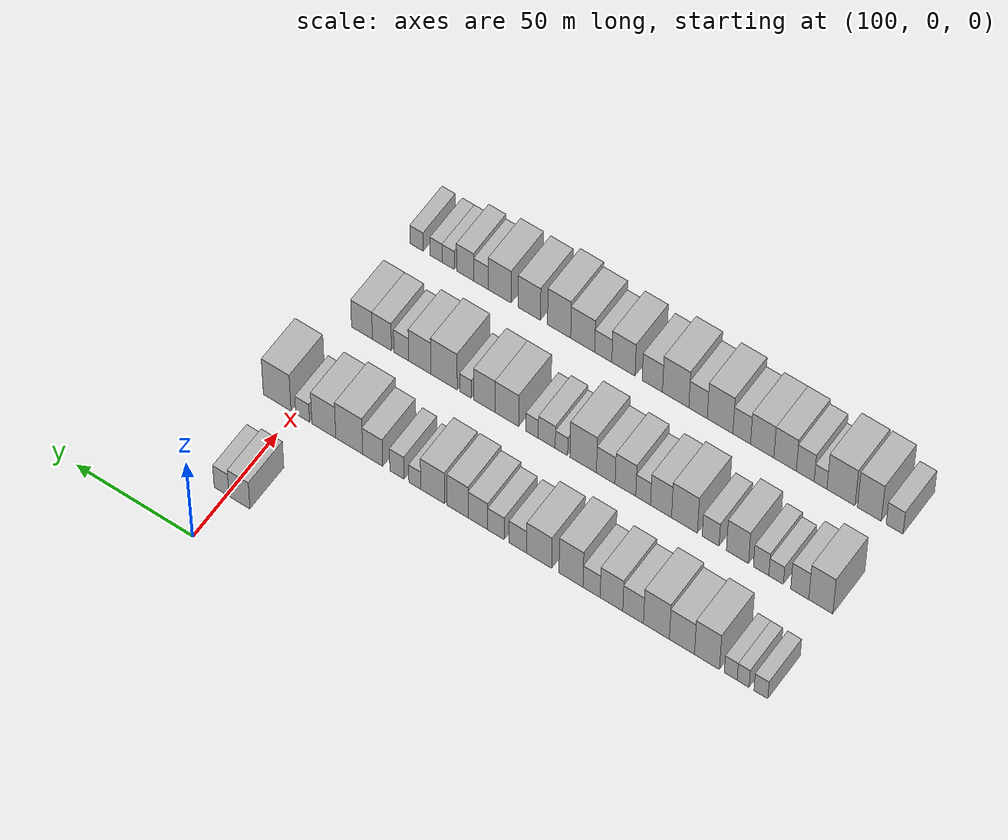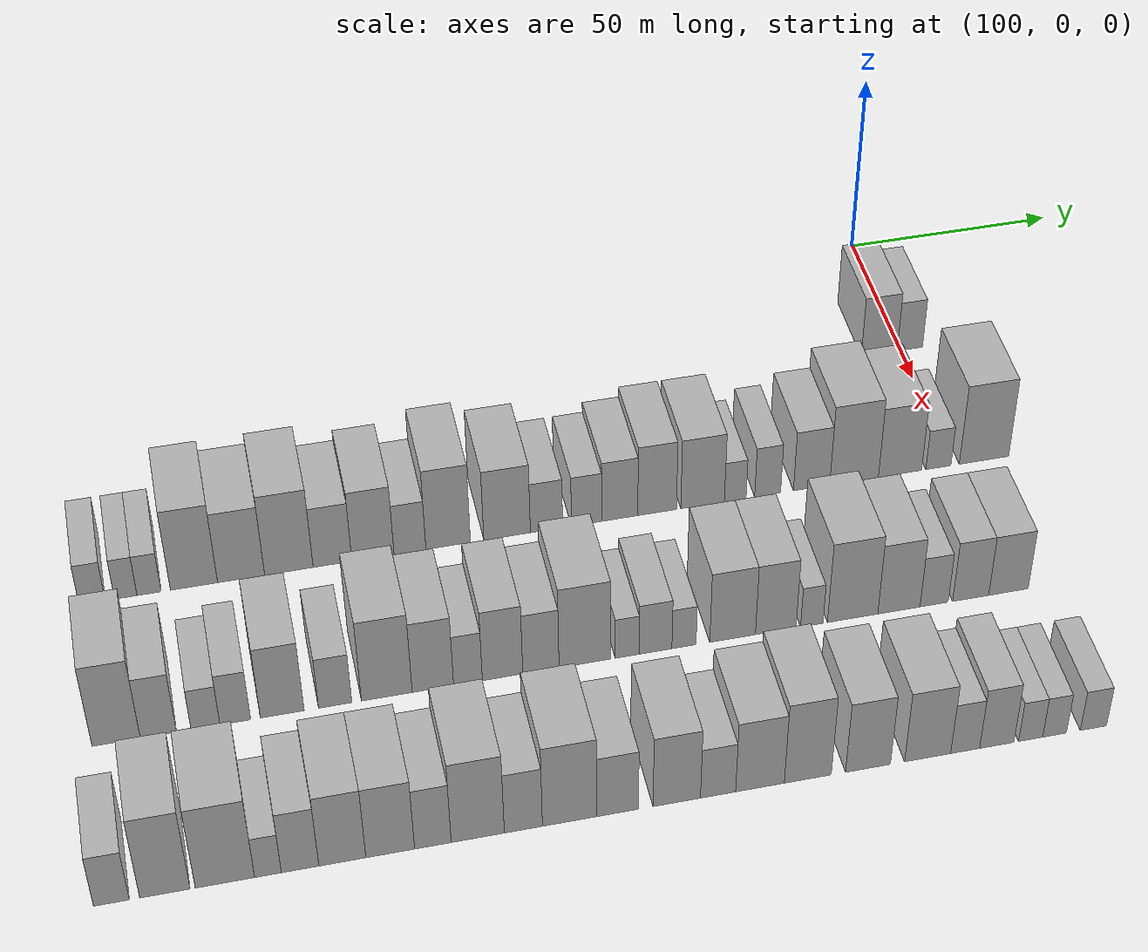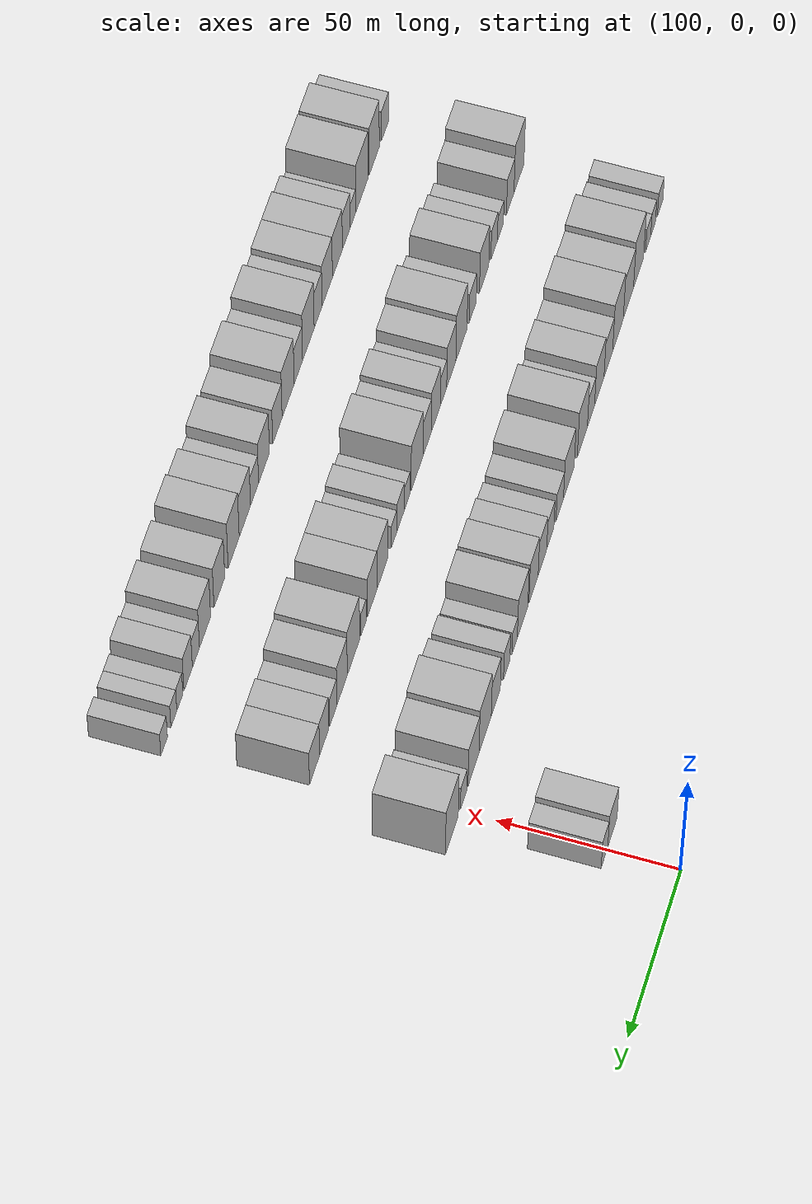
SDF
<sdf version="1.6">
 <world name="default">
  <model name="building_342">
   <static>1</static>
   <pose>130.0000 -5.2598 0 0.000000 0.000000 0.000000</pose>
   <link name="link">
    <pose>0 0 9.00 0 0 0</pose>
    <collision name="collision"><geometry><box><size>20.0000 8.9105 18.0000</size></box></geometry></collision>
    <visual name="visual">
     <cast_shadows>0</cast_shadows>
     <geometry><box><size>20.0000 8.9105 18.0000</size></box></geometry>
     <material>
      <script>
       <uri>model://HANNAS_wall/materials/scripts</uri>
       <uri>model://HANNAS_wall/materials/textures</uri>
       <name>vrc/HANNAS_wall</name>
      </script>
     </material>
    </visual>
   </link>
  </model>
  <model name="building_343">
   <static>1</static>
   <pose>130.0000 2.3541 0 0.000000 0.000000 0.000000</pose>
   <link name="link">
    <pose>0 0 7.50 0 0 0</pose>
    <collision name="collision"><geometry><box><size>20.0000 6.3174 15.0000</size></box></geometry></collision>
    <visual name="visual">
     <cast_shadows>0</cast_shadows>
     <geometry><box><size>20.0000 6.3174 15.0000</size></box></geometry>
     <material>
      <script>
       <uri>model://HANNAS_wall/materials/scripts</uri>
       <uri>model://HANNAS_wall/materials/textures</uri>
       <name>vrc/HANNAS_wall</name>
      </script>
     </material>
    </visual>
   </link>
  </model>
  <model name="building_466">
   <static>1</static>
   <pose>170.0000 -194.4343 0 0.000000 0.000000 0.000000</pose>
   <link name="link">
    <pose>0 0 6.00 0 0 0</pose>
    <collision name="collision"><geometry><box><size>20.0000 5.6229 12.0000</size></box></geometry></collision>
    <visual name="visual">
     <cast_shadows>0</cast_shadows>
     <geometry><box><size>20.0000 5.6229 12.0000</size></box></geometry>
     <material>
      <script>
       <uri>model://HANNAS_wall/materials/scripts</uri>
       <uri>model://HANNAS_wall/materials/textures</uri>
       <name>vrc/HANNAS_wall</name>
      </script>
     </material>
    </visual>
   </link>
  </model>
  <model name="building_467">
   <static>1</static>
   <pose>170.0000 -187.1990 0 0.000000 0.000000 0.000000</pose>
   <link name="link">
    <pose>0 0 6.00 0 0 0</pose>
    <collision name="collision"><geometry><box><size>20.0000 4.8477 12.0000</size></box></geometry></collision>
    <visual name="visual">
     <cast_shadows>0</cast_shadows>
     <geometry><box><size>20.0000 4.8477 12.0000</size></box></geometry>
     <material>
      <script>
       <uri>model://HANNAS_wall/materials/scripts</uri>
       <uri>model://HANNAS_wall/materials/textures</uri>
       <name>vrc/HANNAS_wall</name>
      </script>
     </material>
    </visual>
   </link>
  </model>
  <model name="building_468">
   <static>1</static>
   <pose>170.0000 -182.1726 0 0.000000 0.000000 0.000000</pose>
   <link name="link">
    <pose>0 0 6.00 0 0 0</pose>
    <collision name="collision"><geometry><box><size>20.0000 5.2051 12.0000</size></box></geometry></collision>
    <visual name="visual">
     <cast_shadows>0</cast_shadows>
     <geometry><box><size>20.0000 5.2051 12.0000</size></box></geometry>
     <material>
      <script>
       <uri>model://HANNAS_wall/materials/scripts</uri>
       <uri>model://HANNAS_wall/materials/textures</uri>
       <name>vrc/HANNAS_wall</name>
      </script>
     </material>
    </visual>
   </link>
  </model>
  <model name="building_469">
   <static>1</static>
   <pose>170.0000 -172.4586 0 0.000000 0.000000 0.000000</pose>
   <link name="link">
    <pose>0 0 12.00 0 0 0</pose>
    <collision name="collision"><geometry><box><size>20.0000 10.2230 24.0000</size></box></geometry></collision>
    <visual name="visual">
     <cast_shadows>0</cast_shadows>
     <geometry><box><size>20.0000 10.2230 24.0000</size></box></geometry>
     <material>
      <script>
       <uri>model://HANNAS_wall/materials/scripts</uri>
       <uri>model://HANNAS_wall/materials/textures</uri>
       <name>vrc/HANNAS_wall</name>
      </script>
     </material>
    </visual>
   </link>
  </model>
  <model name="building_470">
   <static>1</static>
   <pose>170.0000 -162.2160 0 0.000000 0.000000 0.000000</pose>
   <link name="link">
    <pose>0 0 10.50 0 0 0</pose>
    <collision name="collision"><geometry><box><size>20.0000 10.2623 21.0000</size></box></geometry></collision>
    <visual name="visual">
     <cast_shadows>0</cast_shadows>
     <geometry><box><size>20.0000 10.2623 21.0000</size></box></geometry>
     <material>
      <script>
       <uri>model://HANNAS_wall/materials/scripts</uri>
       <uri>model://HANNAS_wall/materials/textures</uri>
       <name>vrc/HANNAS_wall</name>
      </script>
     </material>
    </visual>
   </link>
  </model>
  <model name="building_471">
   <static>1</static>
   <pose>170.0000 -151.7544 0 0.000000 0.000000 0.000000</pose>
   <link name="link">
    <pose>0 0 12.00 0 0 0</pose>
    <collision name="collision"><geometry><box><size>20.0000 10.6608 24.0000</size></box></geometry></collision>
    <visual name="visual">
     <cast_shadows>0</cast_shadows>
     <geometry><box><size>20.0000 10.6608 24.0000</size></box></geometry>
     <material>
      <script>
       <uri>model://HANNAS_wall/materials/scripts</uri>
       <uri>model://HANNAS_wall/materials/textures</uri>
       <name>vrc/HANNAS_wall</name>
      </script>
     </material>
    </visual>
   </link>
  </model>
  <model name="building_472">
   <static>1</static>
   <pose>170.0000 -142.1585 0 0.000000 0.000000 0.000000</pose>
   <link name="link">
    <pose>0 0 9.00 0 0 0</pose>
    <collision name="collision"><geometry><box><size>20.0000 8.5311 18.0000</size></box></geometry></collision>
    <visual name="visual">
     <cast_shadows>0</cast_shadows>
     <geometry><box><size>20.0000 8.5311 18.0000</size></box></geometry>
     <material>
      <script>
       <uri>model://HANNAS_wall/materials/scripts</uri>
       <uri>model://HANNAS_wall/materials/textures</uri>
       <name>vrc/HANNAS_wall</name>
      </script>
     </material>
    </visual>
   </link>
  </model>
  <model name="building_473">
   <static>1</static>
   <pose>170.0000 -133.2182 0 0.000000 0.000000 0.000000</pose>
   <link name="link">
    <pose>0 0 10.50 0 0 0</pose>
    <collision name="collision"><geometry><box><size>20.0000 9.3494 21.0000</size></box></geometry></collision>
    <visual name="visual">
     <cast_shadows>0</cast_shadows>
     <geometry><box><size>20.0000 9.3494 21.0000</size></box></geometry>
     <material>
      <script>
       <uri>model://HANNAS_wall/materials/scripts</uri>
       <uri>model://HANNAS_wall/materials/textures</uri>
       <name>vrc/HANNAS_wall</name>
      </script>
     </material>
    </visual>
   </link>
  </model>
  <model name="building_474">
   <static>1</static>
   <pose>170.0000 -124.9927 0 0.000000 0.000000 0.000000</pose>
   <link name="link">
    <pose>0 0 7.50 0 0 0</pose>
    <collision name="collision"><geometry><box><size>20.0000 7.1015 15.0000</size></box></geometry></collision>
    <visual name="visual">
     <cast_shadows>0</cast_shadows>
     <geometry><box><size>20.0000 7.1015 15.0000</size></box></geometry>
     <material>
      <script>
       <uri>model://HANNAS_wall/materials/scripts</uri>
       <uri>model://HANNAS_wall/materials/textures</uri>
       <name>vrc/HANNAS_wall</name>
      </script>
     </material>
    </visual>
   </link>
  </model>
  <model name="building_475">
   <static>1</static>
   <pose>170.0000 -116.4609 0 0.000000 0.000000 0.000000</pose>
   <link name="link">
    <pose>0 0 12.00 0 0 0</pose>
    <collision name="collision"><geometry><box><size>20.0000 9.9622 24.0000</size></box></geometry></collision>
    <visual name="visual">
     <cast_shadows>0</cast_shadows>
     <geometry><box><size>20.0000 9.9622 24.0000</size></box></geometry>
     <material>
      <script>
       <uri>model://HANNAS_wall/materials/scripts</uri>
       <uri>model://HANNAS_wall/materials/textures</uri>
       <name>vrc/HANNAS_wall</name>
      </script>
     </material>
    </visual>
   </link>
  </model>
  <model name="building_476">
   <static>1</static>
   <pose>170.0000 -103.2334 0 0.000000 0.000000 0.000000</pose>
   <link name="link">
    <pose>0 0 10.50 0 0 0</pose>
    <collision name="collision"><geometry><box><size>20.0000 10.4927 21.0000</size></box></geometry></collision>
    <visual name="visual">
     <cast_shadows>0</cast_shadows>
     <geometry><box><size>20.0000 10.4927 21.0000</size></box></geometry>
     <material>
      <script>
       <uri>model://HANNAS_wall/materials/scripts</uri>
       <uri>model://HANNAS_wall/materials/textures</uri>
       <name>vrc/HANNAS_wall</name>
      </script>
     </material>
    </visual>
   </link>
  </model>
  <model name="building_477">
   <static>1</static>
   <pose>170.0000 -94.3351 0 0.000000 0.000000 0.000000</pose>
   <link name="link">
    <pose>0 0 7.50 0 0 0</pose>
    <collision name="collision"><geometry><box><size>20.0000 7.3040 15.0000</size></box></geometry></collision>
    <visual name="visual">
     <cast_shadows>0</cast_shadows>
     <geometry><box><size>20.0000 7.3040 15.0000</size></box></geometry>
     <material>
      <script>
       <uri>model://HANNAS_wall/materials/scripts</uri>
       <uri>model://HANNAS_wall/materials/textures</uri>
       <name>vrc/HANNAS_wall</name>
      </script>
     </material>
    </visual>
   </link>
  </model>
  <model name="building_478">
   <static>1</static>
   <pose>170.0000 -85.2465 0 0.000000 0.000000 0.000000</pose>
   <link name="link">
    <pose>0 0 7.50 0 0 0</pose>
    <collision name="collision"><geometry><box><size>20.0000 6.8730 15.0000</size></box></geometry></collision>
    <visual name="visual">
     <cast_shadows>0</cast_shadows>
     <geometry><box><size>20.0000 6.8730 15.0000</size></box></geometry>
     <material>
      <script>
       <uri>model://HANNAS_wall/materials/scripts</uri>
       <uri>model://HANNAS_wall/materials/textures</uri>
       <name>vrc/HANNAS_wall</name>
      </script>
     </material>
    </visual>
   </link>
  </model>
  <model name="building_479">
   <static>1</static>
   <pose>170.0000 -77.6842 0 0.000000 0.000000 0.000000</pose>
   <link name="link">
    <pose>0 0 9.00 0 0 0</pose>
    <collision name="collision"><geometry><box><size>20.0000 8.2517 18.0000</size></box></geometry></collision>
    <visual name="visual">
     <cast_shadows>0</cast_shadows>
     <geometry><box><size>20.0000 8.2517 18.0000</size></box></geometry>
     <material>
      <script>
       <uri>model://HANNAS_wall/materials/scripts</uri>
       <uri>model://HANNAS_wall/materials/textures</uri>
       <name>vrc/HANNAS_wall</name>
      </script>
     </material>
    </visual>
   </link>
  </model>
  <model name="building_480">
   <static>1</static>
   <pose>170.0000 -69.1161 0 0.000000 0.000000 0.000000</pose>
   <link name="link">
    <pose>0 0 10.50 0 0 0</pose>
    <collision name="collision"><geometry><box><size>20.0000 8.8844 21.0000</size></box></geometry></collision>
    <visual name="visual">
     <cast_shadows>0</cast_shadows>
     <geometry><box><size>20.0000 8.8844 21.0000</size></box></geometry>
     <material>
      <script>
       <uri>model://HANNAS_wall/materials/scripts</uri>
       <uri>model://HANNAS_wall/materials/textures</uri>
       <name>vrc/HANNAS_wall</name>
      </script>
     </material>
    </visual>
   </link>
  </model>
  <model name="building_481">
   <static>1</static>
   <pose>170.0000 -58.6413 0 0.000000 0.000000 0.000000</pose>
   <link name="link">
    <pose>0 0 10.50 0 0 0</pose>
    <collision name="collision"><geometry><box><size>20.0000 10.0652 21.0000</size></box></geometry></collision>
    <visual name="visual">
     <cast_shadows>0</cast_shadows>
     <geometry><box><size>20.0000 10.0652 21.0000</size></box></geometry>
     <material>
      <script>
       <uri>model://HANNAS_wall/materials/scripts</uri>
       <uri>model://HANNAS_wall/materials/textures</uri>
       <name>vrc/HANNAS_wall</name>
      </script>
     </material>
    </visual>
   </link>
  </model>
  <model name="building_482">
   <static>1</static>
   <pose>170.0000 -51.0923 0 0.000000 0.000000 0.000000</pose>
   <link name="link">
    <pose>0 0 6.00 0 0 0</pose>
    <collision name="collision"><geometry><box><size>20.0000 5.0329 12.0000</size></box></geometry></collision>
    <visual name="visual">
     <cast_shadows>0</cast_shadows>
     <geometry><box><size>20.0000 5.0329 12.0000</size></box></geometry>
     <material>
      <script>
       <uri>model://HANNAS_wall/materials/scripts</uri>
       <uri>model://HANNAS_wall/materials/textures</uri>
       <name>vrc/HANNAS_wall</name>
      </script>
     </material>
    </visual>
   </link>
  </model>
  <model name="building_483">
   <static>1</static>
   <pose>170.0000 -43.5519 0 0.000000 0.000000 0.000000</pose>
   <link name="link">
    <pose>0 0 7.50 0 0 0</pose>
    <collision name="collision"><geometry><box><size>20.0000 6.0478 15.0000</size></box></geometry></collision>
    <visual name="visual">
     <cast_shadows>0</cast_shadows>
     <geometry><box><size>20.0000 6.0478 15.0000</size></box></geometry>
     <material>
      <script>
       <uri>model://HANNAS_wall/materials/scripts</uri>
       <uri>model://HANNAS_wall/materials/textures</uri>
       <name>vrc/HANNAS_wall</name>
      </script>
     </material>
    </visual>
   </link>
  </model>
  <model name="building_484">
   <static>1</static>
   <pose>170.0000 -33.2871 0 0.000000 0.000000 0.000000</pose>
   <link name="link">
    <pose>0 0 9.00 0 0 0</pose>
    <collision name="collision"><geometry><box><size>20.0000 8.4818 18.0000</size></box></geometry></collision>
    <visual name="visual">
     <cast_shadows>0</cast_shadows>
     <geometry><box><size>20.0000 8.4818 18.0000</size></box></geometry>
     <material>
      <script>
       <uri>model://HANNAS_wall/materials/scripts</uri>
       <uri>model://HANNAS_wall/materials/textures</uri>
       <name>vrc/HANNAS_wall</name>
      </script>
     </material>
    </visual>
   </link>
  </model>
  <model name="building_485">
   <static>1</static>
   <pose>170.0000 -23.3056 0 0.000000 0.000000 0.000000</pose>
   <link name="link">
    <pose>0 0 12.00 0 0 0</pose>
    <collision name="collision"><geometry><box><size>20.0000 11.4812 24.0000</size></box></geometry></collision>
    <visual name="visual">
     <cast_shadows>0</cast_shadows>
     <geometry><box><size>20.0000 11.4812 24.0000</size></box></geometry>
     <material>
      <script>
       <uri>model://HANNAS_wall/materials/scripts</uri>
       <uri>model://HANNAS_wall/materials/textures</uri>
       <name>vrc/HANNAS_wall</name>
      </script>
     </material>
    </visual>
   </link>
  </model>
  <model name="building_486">
   <static>1</static>
   <pose>170.0000 -12.4539 0 0.000000 0.000000 0.000000</pose>
   <link name="link">
    <pose>0 0 10.50 0 0 0</pose>
    <collision name="collision"><geometry><box><size>20.0000 10.2221 21.0000</size></box></geometry></collision>
    <visual name="visual">
     <cast_shadows>0</cast_shadows>
     <geometry><box><size>20.0000 10.2221 21.0000</size></box></geometry>
     <material>
      <script>
       <uri>model://HANNAS_wall/materials/scripts</uri>
       <uri>model://HANNAS_wall/materials/textures</uri>
       <name>vrc/HANNAS_wall</name>
      </script>
     </material>
    </visual>
   </link>
  </model>
  <model name="building_487">
   <static>1</static>
   <pose>170.0000 -3.3612 0 0.000000 0.000000 0.000000</pose>
   <link name="link">
    <pose>0 0 6.00 0 0 0</pose>
    <collision name="collision"><geometry><box><size>20.0000 5.9633 12.0000</size></box></geometry></collision>
    <visual name="visual">
     <cast_shadows>0</cast_shadows>
     <geometry><box><size>20.0000 5.9633 12.0000</size></box></geometry>
     <material>
      <script>
       <uri>model://HANNAS_wall/materials/scripts</uri>
       <uri>model://HANNAS_wall/materials/textures</uri>
       <name>vrc/HANNAS_wall</name>
      </script>
     </material>
    </visual>
   </link>
  </model>
  <model name="building_488">
   <static>1</static>
   <pose>170.0000 7.5301 0 0.000000 0.000000 0.000000</pose>
   <link name="link">
    <pose>0 0 12.00 0 0 0</pose>
    <collision name="collision"><geometry><box><size>20.0000 11.8194 24.0000</size></box></geometry></collision>
    <visual name="visual">
     <cast_shadows>0</cast_shadows>
     <geometry><box><size>20.0000 11.8194 24.0000</size></box></geometry>
     <material>
      <script>
       <uri>model://HANNAS_wall/materials/scripts</uri>
       <uri>model://HANNAS_wall/materials/textures</uri>
       <name>vrc/HANNAS_wall</name>
      </script>
     </material>
    </visual>
   </link>
  </model>
  <model name="building_608">
   <static>1</static>
   <pose>210.0000 -192.5169 0 0.000000 0.000000 0.000000</pose>
   <link name="link">
    <pose>0 0 12.00 0 0 0</pose>
    <collision name="collision"><geometry><box><size>20.0000 9.8136 24.0000</size></box></geometry></collision>
    <visual name="visual">
     <cast_shadows>0</cast_shadows>
     <geometry><box><size>20.0000 9.8136 24.0000</size></box></geometry>
     <material>
      <script>
       <uri>model://HANNAS_wall/materials/scripts</uri>
       <uri>model://HANNAS_wall/materials/textures</uri>
       <name>vrc/HANNAS_wall</name>
      </script>
     </material>
    </visual>
   </link>
  </model>
  <model name="building_609">
   <static>1</static>
   <pose>210.0000 -183.8991 0 0.000000 0.000000 0.000000</pose>
   <link name="link">
    <pose>0 0 9.00 0 0 0</pose>
    <collision name="collision"><geometry><box><size>20.0000 7.4220 18.0000</size></box></geometry></collision>
    <visual name="visual">
     <cast_shadows>0</cast_shadows>
     <geometry><box><size>20.0000 7.4220 18.0000</size></box></geometry>
     <material>
      <script>
       <uri>model://HANNAS_wall/materials/scripts</uri>
       <uri>model://HANNAS_wall/materials/textures</uri>
       <name>vrc/HANNAS_wall</name>
      </script>
     </material>
    </visual>
   </link>
  </model>
  <model name="building_610">
   <static>1</static>
   <pose>210.0000 -174.2164 0 0.000000 0.000000 0.000000</pose>
   <link name="link">
    <pose>0 0 6.00 0 0 0</pose>
    <collision name="collision"><geometry><box><size>20.0000 5.9435 12.0000</size></box></geometry></collision>
    <visual name="visual">
     <cast_shadows>0</cast_shadows>
     <geometry><box><size>20.0000 5.9435 12.0000</size></box></geometry>
     <material>
      <script>
       <uri>model://HANNAS_wall/materials/scripts</uri>
       <uri>model://HANNAS_wall/materials/textures</uri>
       <name>vrc/HANNAS_wall</name>
      </script>
     </material>
    </visual>
   </link>
  </model>
  <model name="building_611">
   <static>1</static>
   <pose>210.0000 -168.0665 0 0.000000 0.000000 0.000000</pose>
   <link name="link">
    <pose>0 0 7.50 0 0 0</pose>
    <collision name="collision"><geometry><box><size>20.0000 6.3562 15.0000</size></box></geometry></collision>
    <visual name="visual">
     <cast_shadows>0</cast_shadows>
     <geometry><box><size>20.0000 6.3562 15.0000</size></box></geometry>
     <material>
      <script>
       <uri>model://HANNAS_wall/materials/scripts</uri>
       <uri>model://HANNAS_wall/materials/textures</uri>
       <name>vrc/HANNAS_wall</name>
      </script>
     </material>
    </visual>
   </link>
  </model>
  <model name="building_612">
   <static>1</static>
   <pose>210.0000 -158.3302 0 0.000000 0.000000 0.000000</pose>
   <link name="link">
    <pose>0 0 10.50 0 0 0</pose>
    <collision name="collision"><geometry><box><size>20.0000 9.1164 21.0000</size></box></geometry></collision>
    <visual name="visual">
     <cast_shadows>0</cast_shadows>
     <geometry><box><size>20.0000 9.1164 21.0000</size></box></geometry>
     <material>
      <script>
       <uri>model://HANNAS_wall/materials/scripts</uri>
       <uri>model://HANNAS_wall/materials/textures</uri>
       <name>vrc/HANNAS_wall</name>
      </script>
     </material>
    </visual>
   </link>
  </model>
  <model name="building_613">
   <static>1</static>
   <pose>210.0000 -147.2849 0 0.000000 0.000000 0.000000</pose>
   <link name="link">
    <pose>0 0 7.50 0 0 0</pose>
    <collision name="collision"><geometry><box><size>20.0000 6.9743 15.0000</size></box></geometry></collision>
    <visual name="visual">
     <cast_shadows>0</cast_shadows>
     <geometry><box><size>20.0000 6.9743 15.0000</size></box></geometry>
     <material>
      <script>
       <uri>model://HANNAS_wall/materials/scripts</uri>
       <uri>model://HANNAS_wall/materials/textures</uri>
       <name>vrc/HANNAS_wall</name>
      </script>
     </material>
    </visual>
   </link>
  </model>
  <model name="building_614">
   <static>1</static>
   <pose>210.0000 -136.4432 0 0.000000 0.000000 0.000000</pose>
   <link name="link">
    <pose>0 0 12.00 0 0 0</pose>
    <collision name="collision"><geometry><box><size>20.0000 10.7091 24.0000</size></box></geometry></collision>
    <visual name="visual">
     <cast_shadows>0</cast_shadows>
     <geometry><box><size>20.0000 10.7091 24.0000</size></box></geometry>
     <material>
      <script>
       <uri>model://HANNAS_wall/materials/scripts</uri>
       <uri>model://HANNAS_wall/materials/textures</uri>
       <name>vrc/HANNAS_wall</name>
      </script>
     </material>
    </visual>
   </link>
  </model>
  <model name="building_615">
   <static>1</static>
   <pose>210.0000 -126.7074 0 0.000000 0.000000 0.000000</pose>
   <link name="link">
    <pose>0 0 10.50 0 0 0</pose>
    <collision name="collision"><geometry><box><size>20.0000 8.7625 21.0000</size></box></geometry></collision>
    <visual name="visual">
     <cast_shadows>0</cast_shadows>
     <geometry><box><size>20.0000 8.7625 21.0000</size></box></geometry>
     <material>
      <script>
       <uri>model://HANNAS_wall/materials/scripts</uri>
       <uri>model://HANNAS_wall/materials/textures</uri>
       <name>vrc/HANNAS_wall</name>
      </script>
     </material>
    </visual>
   </link>
  </model>
  <model name="building_616">
   <static>1</static>
   <pose>210.0000 -119.2696 0 0.000000 0.000000 0.000000</pose>
   <link name="link">
    <pose>0 0 7.50 0 0 0</pose>
    <collision name="collision"><geometry><box><size>20.0000 6.1130 15.0000</size></box></geometry></collision>
    <visual name="visual">
     <cast_shadows>0</cast_shadows>
     <geometry><box><size>20.0000 6.1130 15.0000</size></box></geometry>
     <material>
      <script>
       <uri>model://HANNAS_wall/materials/scripts</uri>
       <uri>model://HANNAS_wall/materials/textures</uri>
       <name>vrc/HANNAS_wall</name>
      </script>
     </material>
    </visual>
   </link>
  </model>
  <model name="building_617">
   <static>1</static>
   <pose>210.0000 -111.8961 0 0.000000 0.000000 0.000000</pose>
   <link name="link">
    <pose>0 0 10.50 0 0 0</pose>
    <collision name="collision"><geometry><box><size>20.0000 8.6340 21.0000</size></box></geometry></collision>
    <visual name="visual">
     <cast_shadows>0</cast_shadows>
     <geometry><box><size>20.0000 8.6340 21.0000</size></box></geometry>
     <material>
      <script>
       <uri>model://HANNAS_wall/materials/scripts</uri>
       <uri>model://HANNAS_wall/materials/textures</uri>
       <name>vrc/HANNAS_wall</name>
      </script>
     </material>
    </visual>
   </link>
  </model>
  <model name="building_618">
   <static>1</static>
   <pose>210.0000 -103.6850 0 0.000000 0.000000 0.000000</pose>
   <link name="link">
    <pose>0 0 9.00 0 0 0</pose>
    <collision name="collision"><geometry><box><size>20.0000 7.7881 18.0000</size></box></geometry></collision>
    <visual name="visual">
     <cast_shadows>0</cast_shadows>
     <geometry><box><size>20.0000 7.7881 18.0000</size></box></geometry>
     <material>
      <script>
       <uri>model://HANNAS_wall/materials/scripts</uri>
       <uri>model://HANNAS_wall/materials/textures</uri>
       <name>vrc/HANNAS_wall</name>
      </script>
     </material>
    </visual>
   </link>
  </model>
  <model name="building_619">
   <static>1</static>
   <pose>210.0000 -94.2285 0 0.000000 0.000000 0.000000</pose>
   <link name="link">
    <pose>0 0 12.00 0 0 0</pose>
    <collision name="collision"><geometry><box><size>20.0000 11.1250 24.0000</size></box></geometry></collision>
    <visual name="visual">
     <cast_shadows>0</cast_shadows>
     <geometry><box><size>20.0000 11.1250 24.0000</size></box></geometry>
     <material>
      <script>
       <uri>model://HANNAS_wall/materials/scripts</uri>
       <uri>model://HANNAS_wall/materials/textures</uri>
       <name>vrc/HANNAS_wall</name>
      </script>
     </material>
    </visual>
   </link>
  </model>
  <model name="building_620">
   <static>1</static>
   <pose>210.0000 -85.0710 0 0.000000 0.000000 0.000000</pose>
   <link name="link">
    <pose>0 0 6.00 0 0 0</pose>
    <collision name="collision"><geometry><box><size>20.0000 5.1900 12.0000</size></box></geometry></collision>
    <visual name="visual">
     <cast_shadows>0</cast_shadows>
     <geometry><box><size>20.0000 5.1900 12.0000</size></box></geometry>
     <material>
      <script>
       <uri>model://HANNAS_wall/materials/scripts</uri>
       <uri>model://HANNAS_wall/materials/textures</uri>
       <name>vrc/HANNAS_wall</name>
      </script>
     </material>
    </visual>
   </link>
  </model>
  <model name="building_621">
   <static>1</static>
   <pose>210.0000 -78.9095 0 0.000000 0.000000 0.000000</pose>
   <link name="link">
    <pose>0 0 7.50 0 0 0</pose>
    <collision name="collision"><geometry><box><size>20.0000 7.1330 15.0000</size></box></geometry></collision>
    <visual name="visual">
     <cast_shadows>0</cast_shadows>
     <geometry><box><size>20.0000 7.1330 15.0000</size></box></geometry>
     <material>
      <script>
       <uri>model://HANNAS_wall/materials/scripts</uri>
       <uri>model://HANNAS_wall/materials/textures</uri>
       <name>vrc/HANNAS_wall</name>
      </script>
     </material>
    </visual>
   </link>
  </model>
  <model name="building_622">
   <static>1</static>
   <pose>210.0000 -72.7045 0 0.000000 0.000000 0.000000</pose>
   <link name="link">
    <pose>0 0 6.00 0 0 0</pose>
    <collision name="collision"><geometry><box><size>20.0000 5.2769 12.0000</size></box></geometry></collision>
    <visual name="visual">
     <cast_shadows>0</cast_shadows>
     <geometry><box><size>20.0000 5.2769 12.0000</size></box></geometry>
     <material>
      <script>
       <uri>model://HANNAS_wall/materials/scripts</uri>
       <uri>model://HANNAS_wall/materials/textures</uri>
       <name>vrc/HANNAS_wall</name>
      </script>
     </material>
    </visual>
   </link>
  </model>
  <model name="building_623">
   <static>1</static>
   <pose>210.0000 -62.0403 0 0.000000 0.000000 0.000000</pose>
   <link name="link">
    <pose>0 0 10.50 0 0 0</pose>
    <collision name="collision"><geometry><box><size>20.0000 10.0515 21.0000</size></box></geometry></collision>
    <visual name="visual">
     <cast_shadows>0</cast_shadows>
     <geometry><box><size>20.0000 10.0515 21.0000</size></box></geometry>
     <material>
      <script>
       <uri>model://HANNAS_wall/materials/scripts</uri>
       <uri>model://HANNAS_wall/materials/textures</uri>
       <name>vrc/HANNAS_wall</name>
      </script>
     </material>
    </visual>
   </link>
  </model>
  <model name="building_624">
   <static>1</static>
   <pose>210.0000 -52.5276 0 0.000000 0.000000 0.000000</pose>
   <link name="link">
    <pose>0 0 10.50 0 0 0</pose>
    <collision name="collision"><geometry><box><size>20.0000 8.9738 21.0000</size></box></geometry></collision>
    <visual name="visual">
     <cast_shadows>0</cast_shadows>
     <geometry><box><size>20.0000 8.9738 21.0000</size></box></geometry>
     <material>
      <script>
       <uri>model://HANNAS_wall/materials/scripts</uri>
       <uri>model://HANNAS_wall/materials/textures</uri>
       <name>vrc/HANNAS_wall</name>
      </script>
     </material>
    </visual>
   </link>
  </model>
  <model name="building_625">
   <static>1</static>
   <pose>210.0000 -44.5511 0 0.000000 0.000000 0.000000</pose>
   <link name="link">
    <pose>0 0 6.00 0 0 0</pose>
    <collision name="collision"><geometry><box><size>20.0000 4.9792 12.0000</size></box></geometry></collision>
    <visual name="visual">
     <cast_shadows>0</cast_shadows>
     <geometry><box><size>20.0000 4.9792 12.0000</size></box></geometry>
     <material>
      <script>
       <uri>model://HANNAS_wall/materials/scripts</uri>
       <uri>model://HANNAS_wall/materials/textures</uri>
       <name>vrc/HANNAS_wall</name>
      </script>
     </material>
    </visual>
   </link>
  </model>
  <model name="building_626">
   <static>1</static>
   <pose>210.0000 -35.4413 0 0.000000 0.000000 0.000000</pose>
   <link name="link">
    <pose>0 0 12.00 0 0 0</pose>
    <collision name="collision"><geometry><box><size>20.0000 11.2404 24.0000</size></box></geometry></collision>
    <visual name="visual">
     <cast_shadows>0</cast_shadows>
     <geometry><box><size>20.0000 11.2404 24.0000</size></box></geometry>
     <material>
      <script>
       <uri>model://HANNAS_wall/materials/scripts</uri>
       <uri>model://HANNAS_wall/materials/textures</uri>
       <name>vrc/HANNAS_wall</name>
      </script>
     </material>
    </visual>
   </link>
  </model>
  <model name="building_627">
   <static>1</static>
   <pose>210.0000 -25.0858 0 0.000000 0.000000 0.000000</pose>
   <link name="link">
    <pose>0 0 10.50 0 0 0</pose>
    <collision name="collision"><geometry><box><size>20.0000 9.4706 21.0000</size></box></geometry></collision>
    <visual name="visual">
     <cast_shadows>0</cast_shadows>
     <geometry><box><size>20.0000 9.4706 21.0000</size></box></geometry>
     <material>
      <script>
       <uri>model://HANNAS_wall/materials/scripts</uri>
       <uri>model://HANNAS_wall/materials/textures</uri>
       <name>vrc/HANNAS_wall</name>
      </script>
     </material>
    </visual>
   </link>
  </model>
  <model name="building_628">
   <static>1</static>
   <pose>210.0000 -17.1728 0 0.000000 0.000000 0.000000</pose>
   <link name="link">
    <pose>0 0 7.50 0 0 0</pose>
    <collision name="collision"><geometry><box><size>20.0000 6.3554 15.0000</size></box></geometry></collision>
    <visual name="visual">
     <cast_shadows>0</cast_shadows>
     <geometry><box><size>20.0000 6.3554 15.0000</size></box></geometry>
     <material>
      <script>
       <uri>model://HANNAS_wall/materials/scripts</uri>
       <uri>model://HANNAS_wall/materials/textures</uri>
       <name>vrc/HANNAS_wall</name>
      </script>
     </material>
    </visual>
   </link>
  </model>
  <model name="building_629">
   <static>1</static>
   <pose>210.0000 -8.8990 0 0.000000 0.000000 0.000000</pose>
   <link name="link">
    <pose>0 0 9.00 0 0 0</pose>
    <collision name="collision"><geometry><box><size>20.0000 8.1922 18.0000</size></box></geometry></collision>
    <visual name="visual">
     <cast_shadows>0</cast_shadows>
     <geometry><box><size>20.0000 8.1922 18.0000</size></box></geometry>
     <material>
      <script>
       <uri>model://HANNAS_wall/materials/scripts</uri>
       <uri>model://HANNAS_wall/materials/textures</uri>
       <name>vrc/HANNAS_wall</name>
      </script>
     </material>
    </visual>
   </link>
  </model>
  <model name="building_630">
   <static>1</static>
   <pose>210.0000 -0.3094 0 0.000000 0.000000 0.000000</pose>
   <link name="link">
    <pose>0 0 9.00 0 0 0</pose>
    <collision name="collision"><geometry><box><size>20.0000 8.9871 18.0000</size></box></geometry></collision>
    <visual name="visual">
     <cast_shadows>0</cast_shadows>
     <geometry><box><size>20.0000 8.9871 18.0000</size></box></geometry>
     <material>
      <script>
       <uri>model://HANNAS_wall/materials/scripts</uri>
       <uri>model://HANNAS_wall/materials/textures</uri>
       <name>vrc/HANNAS_wall</name>
      </script>
     </material>
    </visual>
   </link>
  </model>
  <model name="building_752">
   <static>1</static>
   <pose>250.0000 -196.6821 0 0.000000 0.000000 0.000000</pose>
   <link name="link">
    <pose>0 0 7.50 0 0 0</pose>
    <collision name="collision"><geometry><box><size>20.0000 6.9165 15.0000</size></box></geometry></collision>
    <visual name="visual">
     <cast_shadows>0</cast_shadows>
     <geometry><box><size>20.0000 6.9165 15.0000</size></box></geometry>
     <material>
      <script>
       <uri>model://HANNAS_wall/materials/scripts</uri>
       <uri>model://HANNAS_wall/materials/textures</uri>
       <name>vrc/HANNAS_wall</name>
      </script>
     </material>
    </visual>
   </link>
  </model>
  <model name="building_753">
   <static>1</static>
   <pose>250.0000 -186.3409 0 0.000000 0.000000 0.000000</pose>
   <link name="link">
    <pose>0 0 12.00 0 0 0</pose>
    <collision name="collision"><geometry><box><size>20.0000 9.7659 24.0000</size></box></geometry></collision>
    <visual name="visual">
     <cast_shadows>0</cast_shadows>
     <geometry><box><size>20.0000 9.7659 24.0000</size></box></geometry>
     <material>
      <script>
       <uri>model://HANNAS_wall/materials/scripts</uri>
       <uri>model://HANNAS_wall/materials/textures</uri>
       <name>vrc/HANNAS_wall</name>
      </script>
     </material>
    </visual>
   </link>
  </model>
  <model name="building_754">
   <static>1</static>
   <pose>250.0000 -174.6660 0 0.000000 0.000000 0.000000</pose>
   <link name="link">
    <pose>0 0 12.00 0 0 0</pose>
    <collision name="collision"><geometry><box><size>20.0000 11.5839 24.0000</size></box></geometry></collision>
    <visual name="visual">
     <cast_shadows>0</cast_shadows>
     <geometry><box><size>20.0000 11.5839 24.0000</size></box></geometry>
     <material>
      <script>
       <uri>model://HANNAS_wall/materials/scripts</uri>
       <uri>model://HANNAS_wall/materials/textures</uri>
       <name>vrc/HANNAS_wall</name>
      </script>
     </material>
    </visual>
   </link>
  </model>
  <model name="building_755">
   <static>1</static>
   <pose>250.0000 -166.2453 0 0.000000 0.000000 0.000000</pose>
   <link name="link">
    <pose>0 0 6.00 0 0 0</pose>
    <collision name="collision"><geometry><box><size>20.0000 5.2575 12.0000</size></box></geometry></collision>
    <visual name="visual">
     <cast_shadows>0</cast_shadows>
     <geometry><box><size>20.0000 5.2575 12.0000</size></box></geometry>
     <material>
      <script>
       <uri>model://HANNAS_wall/materials/scripts</uri>
       <uri>model://HANNAS_wall/materials/textures</uri>
       <name>vrc/HANNAS_wall</name>
      </script>
     </material>
    </visual>
   </link>
  </model>
  <model name="building_756">
   <static>1</static>
   <pose>250.0000 -159.9228 0 0.000000 0.000000 0.000000</pose>
   <link name="link">
    <pose>0 0 9.00 0 0 0</pose>
    <collision name="collision"><geometry><box><size>20.0000 7.3875 18.0000</size></box></geometry></collision>
    <visual name="visual">
     <cast_shadows>0</cast_shadows>
     <geometry><box><size>20.0000 7.3875 18.0000</size></box></geometry>
     <material>
      <script>
       <uri>model://HANNAS_wall/materials/scripts</uri>
       <uri>model://HANNAS_wall/materials/textures</uri>
       <name>vrc/HANNAS_wall</name>
      </script>
     </material>
    </visual>
   </link>
  </model>
  <model name="building_757">
   <static>1</static>
   <pose>250.0000 -151.5741 0 0.000000 0.000000 0.000000</pose>
   <link name="link">
    <pose>0 0 10.50 0 0 0</pose>
    <collision name="collision"><geometry><box><size>20.0000 9.3100 21.0000</size></box></geometry></collision>
    <visual name="visual">
     <cast_shadows>0</cast_shadows>
     <geometry><box><size>20.0000 9.3100 21.0000</size></box></geometry>
     <material>
      <script>
       <uri>model://HANNAS_wall/materials/scripts</uri>
       <uri>model://HANNAS_wall/materials/textures</uri>
       <name>vrc/HANNAS_wall</name>
      </script>
     </material>
    </visual>
   </link>
  </model>
  <model name="building_758">
   <static>1</static>
   <pose>250.0000 -142.0632 0 0.000000 0.000000 0.000000</pose>
   <link name="link">
    <pose>0 0 10.50 0 0 0</pose>
    <collision name="collision"><geometry><box><size>20.0000 9.7118 21.0000</size></box></geometry></collision>
    <visual name="visual">
     <cast_shadows>0</cast_shadows>
     <geometry><box><size>20.0000 9.7118 21.0000</size></box></geometry>
     <material>
      <script>
       <uri>model://HANNAS_wall/materials/scripts</uri>
       <uri>model://HANNAS_wall/materials/textures</uri>
       <name>vrc/HANNAS_wall</name>
      </script>
     </material>
    </visual>
   </link>
  </model>
  <model name="building_759">
   <static>1</static>
   <pose>250.0000 -133.5440 0 0.000000 0.000000 0.000000</pose>
   <link name="link">
    <pose>0 0 9.00 0 0 0</pose>
    <collision name="collision"><geometry><box><size>20.0000 7.3266 18.0000</size></box></geometry></collision>
    <visual name="visual">
     <cast_shadows>0</cast_shadows>
     <geometry><box><size>20.0000 7.3266 18.0000</size></box></geometry>
     <material>
      <script>
       <uri>model://HANNAS_wall/materials/scripts</uri>
       <uri>model://HANNAS_wall/materials/textures</uri>
       <name>vrc/HANNAS_wall</name>
      </script>
     </material>
    </visual>
   </link>
  </model>
  <model name="building_760">
   <static>1</static>
   <pose>250.0000 -124.5284 0 0.000000 0.000000 0.000000</pose>
   <link name="link">
    <pose>0 0 12.00 0 0 0</pose>
    <collision name="collision"><geometry><box><size>20.0000 10.7046 24.0000</size></box></geometry></collision>
    <visual name="visual">
     <cast_shadows>0</cast_shadows>
     <geometry><box><size>20.0000 10.7046 24.0000</size></box></geometry>
     <material>
      <script>
       <uri>model://HANNAS_wall/materials/scripts</uri>
       <uri>model://HANNAS_wall/materials/textures</uri>
       <name>vrc/HANNAS_wall</name>
      </script>
     </material>
    </visual>
   </link>
  </model>
  <model name="building_761">
   <static>1</static>
   <pose>250.0000 -115.3183 0 0.000000 0.000000 0.000000</pose>
   <link name="link">
    <pose>0 0 9.00 0 0 0</pose>
    <collision name="collision"><geometry><box><size>20.0000 7.7156 18.0000</size></box></geometry></collision>
    <visual name="visual">
     <cast_shadows>0</cast_shadows>
     <geometry><box><size>20.0000 7.7156 18.0000</size></box></geometry>
     <material>
      <script>
       <uri>model://HANNAS_wall/materials/scripts</uri>
       <uri>model://HANNAS_wall/materials/textures</uri>
       <name>vrc/HANNAS_wall</name>
      </script>
     </material>
    </visual>
   </link>
  </model>
  <model name="building_762">
   <static>1</static>
   <pose>250.0000 -105.9332 0 0.000000 0.000000 0.000000</pose>
   <link name="link">
    <pose>0 0 12.00 0 0 0</pose>
    <collision name="collision"><geometry><box><size>20.0000 11.0545 24.0000</size></box></geometry></collision>
    <visual name="visual">
     <cast_shadows>0</cast_shadows>
     <geometry><box><size>20.0000 11.0545 24.0000</size></box></geometry>
     <material>
      <script>
       <uri>model://HANNAS_wall/materials/scripts</uri>
       <uri>model://HANNAS_wall/materials/textures</uri>
       <name>vrc/HANNAS_wall</name>
      </script>
     </material>
    </visual>
   </link>
  </model>
  <model name="building_763">
   <static>1</static>
   <pose>250.0000 -96.1313 0 0.000000 0.000000 0.000000</pose>
   <link name="link">
    <pose>0 0 9.00 0 0 0</pose>
    <collision name="collision"><geometry><box><size>20.0000 8.5493 18.0000</size></box></geometry></collision>
    <visual name="visual">
     <cast_shadows>0</cast_shadows>
     <geometry><box><size>20.0000 8.5493 18.0000</size></box></geometry>
     <material>
      <script>
       <uri>model://HANNAS_wall/materials/scripts</uri>
       <uri>model://HANNAS_wall/materials/textures</uri>
       <name>vrc/HANNAS_wall</name>
      </script>
     </material>
    </visual>
   </link>
  </model>
  <model name="building_764">
   <static>1</static>
   <pose>250.0000 -83.9613 0 0.000000 0.000000 0.000000</pose>
   <link name="link">
    <pose>0 0 10.50 0 0 0</pose>
    <collision name="collision"><geometry><box><size>20.0000 9.7907 21.0000</size></box></geometry></collision>
    <visual name="visual">
     <cast_shadows>0</cast_shadows>
     <geometry><box><size>20.0000 9.7907 21.0000</size></box></geometry>
     <material>
      <script>
       <uri>model://HANNAS_wall/materials/scripts</uri>
       <uri>model://HANNAS_wall/materials/textures</uri>
       <name>vrc/HANNAS_wall</name>
      </script>
     </material>
    </visual>
   </link>
  </model>
  <model name="building_765">
   <static>1</static>
   <pose>250.0000 -75.4190 0 0.000000 0.000000 0.000000</pose>
   <link name="link">
    <pose>0 0 7.50 0 0 0</pose>
    <collision name="collision"><geometry><box><size>20.0000 7.2940 15.0000</size></box></geometry></collision>
    <visual name="visual">
     <cast_shadows>0</cast_shadows>
     <geometry><box><size>20.0000 7.2940 15.0000</size></box></geometry>
     <material>
      <script>
       <uri>model://HANNAS_wall/materials/scripts</uri>
       <uri>model://HANNAS_wall/materials/textures</uri>
       <name>vrc/HANNAS_wall</name>
      </script>
     </material>
    </visual>
   </link>
  </model>
  <model name="building_766">
   <static>1</static>
   <pose>250.0000 -66.6908 0 0.000000 0.000000 0.000000</pose>
   <link name="link">
    <pose>0 0 10.50 0 0 0</pose>
    <collision name="collision"><geometry><box><size>20.0000 10.1623 21.0000</size></box></geometry></collision>
    <visual name="visual">
     <cast_shadows>0</cast_shadows>
     <geometry><box><size>20.0000 10.1623 21.0000</size></box></geometry>
     <material>
      <script>
       <uri>model://HANNAS_wall/materials/scripts</uri>
       <uri>model://HANNAS_wall/materials/textures</uri>
       <name>vrc/HANNAS_wall</name>
      </script>
     </material>
    </visual>
   </link>
  </model>
  <model name="building_767">
   <static>1</static>
   <pose>250.0000 -56.6817 0 0.000000 0.000000 0.000000</pose>
   <link name="link">
    <pose>0 0 12.00 0 0 0</pose>
    <collision name="collision"><geometry><box><size>20.0000 9.8559 24.0000</size></box></geometry></collision>
    <visual name="visual">
     <cast_shadows>0</cast_shadows>
     <geometry><box><size>20.0000 9.8559 24.0000</size></box></geometry>
     <material>
      <script>
       <uri>model://HANNAS_wall/materials/scripts</uri>
       <uri>model://HANNAS_wall/materials/textures</uri>
       <name>vrc/HANNAS_wall</name>
      </script>
     </material>
    </visual>
   </link>
  </model>
  <model name="building_768">
   <static>1</static>
   <pose>250.0000 -44.0010 0 0.000000 0.000000 0.000000</pose>
   <link name="link">
    <pose>0 0 10.50 0 0 0</pose>
    <collision name="collision"><geometry><box><size>20.0000 9.5054 21.0000</size></box></geometry></collision>
    <visual name="visual">
     <cast_shadows>0</cast_shadows>
     <geometry><box><size>20.0000 9.5054 21.0000</size></box></geometry>
     <material>
      <script>
       <uri>model://HANNAS_wall/materials/scripts</uri>
       <uri>model://HANNAS_wall/materials/textures</uri>
       <name>vrc/HANNAS_wall</name>
      </script>
     </material>
    </visual>
   </link>
  </model>
  <model name="building_769">
   <static>1</static>
   <pose>250.0000 -31.3406 0 0.000000 0.000000 0.000000</pose>
   <link name="link">
    <pose>0 0 10.50 0 0 0</pose>
    <collision name="collision"><geometry><box><size>20.0000 9.8155 21.0000</size></box></geometry></collision>
    <visual name="visual">
     <cast_shadows>0</cast_shadows>
     <geometry><box><size>20.0000 9.8155 21.0000</size></box></geometry>
     <material>
      <script>
       <uri>model://HANNAS_wall/materials/scripts</uri>
       <uri>model://HANNAS_wall/materials/textures</uri>
       <name>vrc/HANNAS_wall</name>
      </script>
     </material>
    </visual>
   </link>
  </model>
  <model name="building_770">
   <static>1</static>
   <pose>250.0000 -23.3260 0 0.000000 0.000000 0.000000</pose>
   <link name="link">
    <pose>0 0 7.50 0 0 0</pose>
    <collision name="collision"><geometry><box><size>20.0000 6.2136 15.0000</size></box></geometry></collision>
    <visual name="visual">
     <cast_shadows>0</cast_shadows>
     <geometry><box><size>20.0000 6.2136 15.0000</size></box></geometry>
     <material>
      <script>
       <uri>model://HANNAS_wall/materials/scripts</uri>
       <uri>model://HANNAS_wall/materials/textures</uri>
       <name>vrc/HANNAS_wall</name>
      </script>
     </material>
    </visual>
   </link>
  </model>
  <model name="building_771">
   <static>1</static>
   <pose>250.0000 -16.5335 0 0.000000 0.000000 0.000000</pose>
   <link name="link">
    <pose>0 0 9.00 0 0 0</pose>
    <collision name="collision"><geometry><box><size>20.0000 7.3715 18.0000</size></box></geometry></collision>
    <visual name="visual">
     <cast_shadows>0</cast_shadows>
     <geometry><box><size>20.0000 7.3715 18.0000</size></box></geometry>
     <material>
      <script>
       <uri>model://HANNAS_wall/materials/scripts</uri>
       <uri>model://HANNAS_wall/materials/textures</uri>
       <name>vrc/HANNAS_wall</name>
      </script>
     </material>
    </visual>
   </link>
  </model>
  <model name="building_772">
   <static>1</static>
   <pose>250.0000 -9.2369 0 0.000000 0.000000 0.000000</pose>
   <link name="link">
    <pose>0 0 6.00 0 0 0</pose>
    <collision name="collision"><geometry><box><size>20.0000 5.2216 12.0000</size></box></geometry></collision>
    <visual name="visual">
     <cast_shadows>0</cast_shadows>
     <geometry><box><size>20.0000 5.2216 12.0000</size></box></geometry>
     <material>
      <script>
       <uri>model://HANNAS_wall/materials/scripts</uri>
       <uri>model://HANNAS_wall/materials/textures</uri>
       <name>vrc/HANNAS_wall</name>
      </script>
     </material>
    </visual>
   </link>
  </model>
  <model name="building_773">
   <static>1</static>
   <pose>250.0000 -4.0519 0 0.000000 0.000000 0.000000</pose>
   <link name="link">
    <pose>0 0 6.00 0 0 0</pose>
    <collision name="collision"><geometry><box><size>20.0000 5.1484 12.0000</size></box></geometry></collision>
    <visual name="visual">
     <cast_shadows>0</cast_shadows>
     <geometry><box><size>20.0000 5.1484 12.0000</size></box></geometry>
     <material>
      <script>
       <uri>model://HANNAS_wall/materials/scripts</uri>
       <uri>model://HANNAS_wall/materials/textures</uri>
       <name>vrc/HANNAS_wall</name>
      </script>
     </material>
    </visual>
   </link>
  </model>
  <model name="building_774">
   <static>1</static>
   <pose>250.0000 4.3768 0 0.000000 0.000000 0.000000</pose>
   <link name="link">
    <pose>0 0 6.00 0 0 0</pose>
    <collision name="collision"><geometry><box><size>20.0000 5.7088 12.0000</size></box></geometry></collision>
    <visual name="visual">
     <cast_shadows>0</cast_shadows>
     <geometry><box><size>20.0000 5.7088 12.0000</size></box></geometry>
     <material>
      <script>
       <uri>model://HANNAS_wall/materials/scripts</uri>
       <uri>model://HANNAS_wall/materials/textures</uri>
       <name>vrc/HANNAS_wall</name>
      </script>
     </material>
    </visual>
   </link>
  </model>
 </world>
</sdf>
